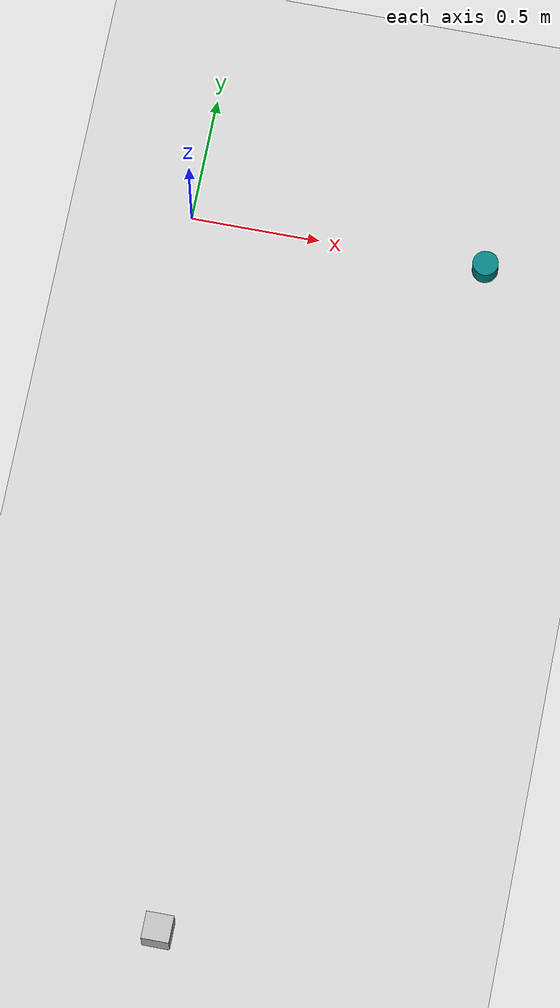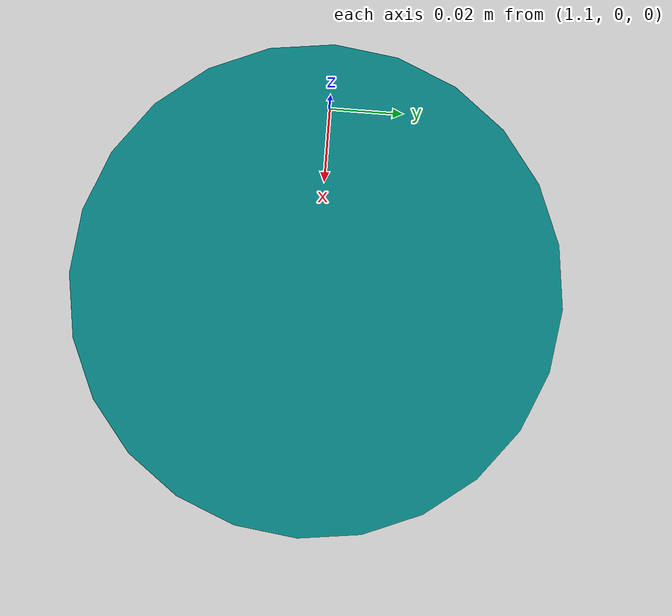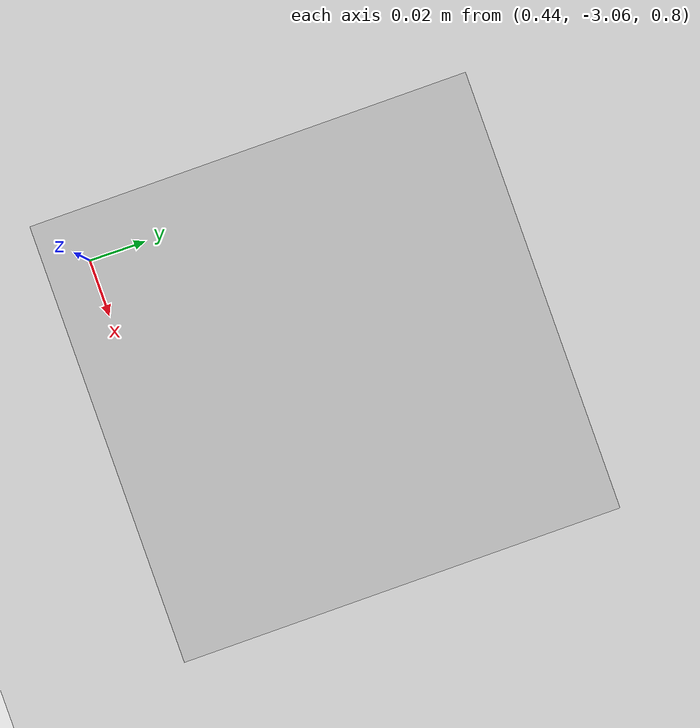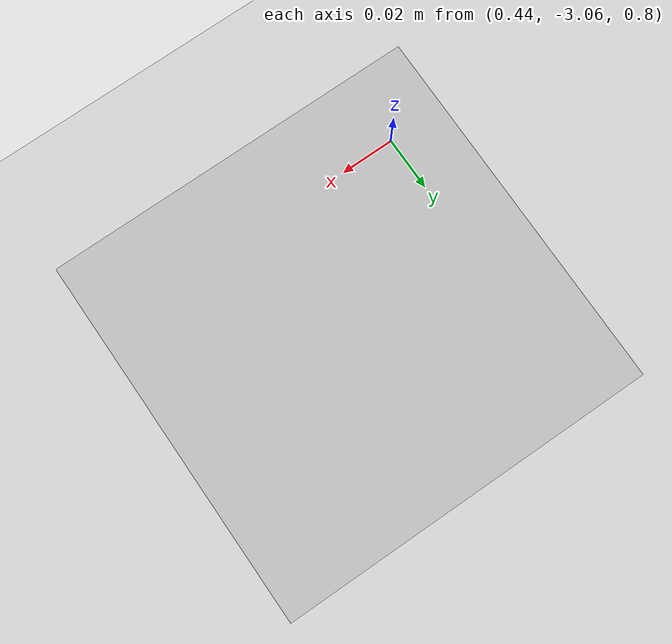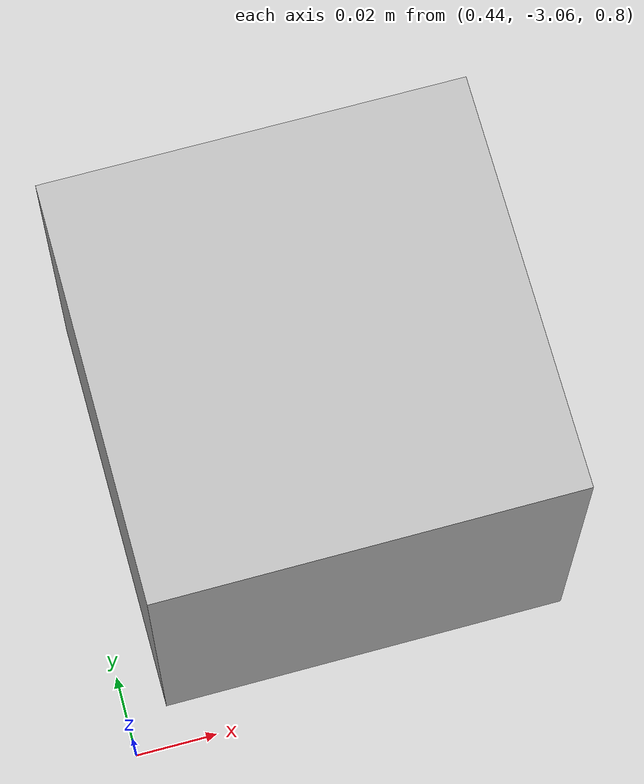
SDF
<?xml version="1.0" ?>
<sdf version="1.4">
	<world name="arm_world">

		<physics name='default_physics' default='0' type='ode'>
			<gravity>0.000000 0.000000 -9.800000</gravity>
			<max_step_size>0.001</max_step_size>
			<real_time_update_rate>0.0</real_time_update_rate>
			<!-- run as fast as possible -->
		</physics>

		<light name="sun" type="directional">
			<cast_shadows>1</cast_shadows>
			<pose>0 0 10 0 -0 0</pose>
			<diffuse>0.8 0.8 0.8 1</diffuse>
			<specular>0.2 0.2 0.2 1</specular>
			<attenuation>
				<range>1000</range>
				<constant>0.9</constant>
				<linear>0.01</linear>
				<quadratic>0.001</quadratic>
			</attenuation>
			<direction>-0.5 0.1 -0.9</direction>
		</light>

		<!-- Ground Plane -->
		<include>
			<uri>model://ground_plane</uri>
		</include>

		<!-- CAMERA -->
		<model name="camera">
			<link name="link">
				<gravity>false</gravity>
				<pose>0.5 -3.0 0.85 0 0 1.57</pose>
				<inertial>
					<mass>0.1</mass>
				</inertial>
				<visual name="visual">
					<geometry>
						<box>
							<size>0.1 0.1 0.1</size>
						</box>
					</geometry>
				</visual>
				<sensor name="camera" type="camera">
					<camera>
						<horizontal_fov>1.047</horizontal_fov>
						<image>
							<width>64</width>
							<height>64</height>
						</image>
						<clip>
							<near>0.1</near>
							<far>100</far>
						</clip>
					</camera>
					<always_on>1</always_on>
					<update_rate>10</update_rate>
					<visualize>true</visualize>
				</sensor>
			</link>
		</model>

		<!-- TUBE/COLLISION -->
		<model name="tube">
			<link name="tube_link">

				<pose>1.15 0.0 0 0 0 0</pose>

				<collision name="tube_collision">
					<geometry>
						<cylinder>
							<radius>0.05</radius>
							<length>0.15</length>
						</cylinder>
					</geometry>
				</collision>

				<visual name="visual">
					<geometry>
						<cylinder>
							<radius>0.05</radius>
							<length>0.15</length>
						</cylinder>
					</geometry>
					<material>
						<ambient>0.5 0.5 0.5 1</ambient>
						<diffuse>0.01 0.5 0.5 1</diffuse>
						<specular>0.01 0.01 0.01 1</specular>
						<emissive>0.1 0.1 0 0</emissive>
						<shader type='vertex'>
							<normal_map>__default__</normal_map>
						</shader>
					</material>
				</visual>

				<sensor name='my_contact' type='contact'>
					<contact>
						<collision>tube_collision</collision>
					</contact>
				</sensor>
			</link>

			<joint name="tube_joint" type="fixed">
				<pose>0 0 0 0 0 0</pose>
				<child>link</child>
				<parent>world</parent>
				<axis>
					<xyz>0 0 1</xyz>
				</axis>
			</joint>
			<plugin name="PropPlugin" filename="libgazeboPropPlugin.so" />
		</model>

	</world>
</sdf>
